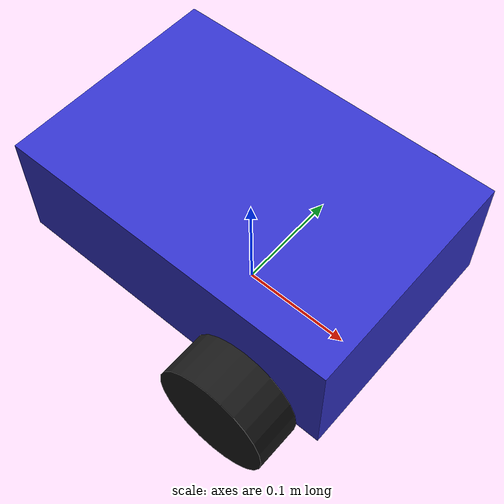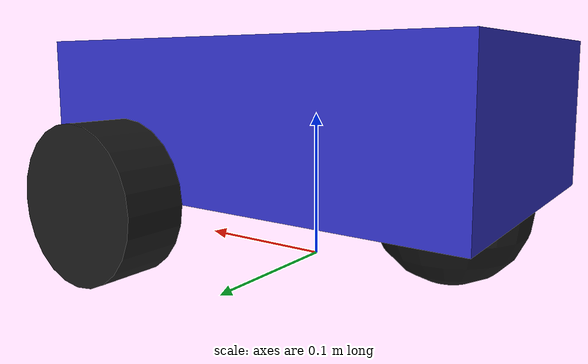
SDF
<?xml version="1.0" ?>
<sdf version="1.9">
  <model name="basicbot">
    <pose>0 0 0 0 0 0</pose>

    <link name="base_link">
      <pose>0 0 0.1 0 0 0</pose>

      <inertial>
        <mass>2.0</mass>
        <inertia>
          <ixx>0.008333</ixx>
          <ixy>0</ixy>
          <ixz>0</ixz>
          <iyy>0.016666</iyy>
          <iyz>0</iyz>
          <izz>0.021666</izz>
        </inertia>
      </inertial>

      <visual name="chassis_visual">
        <geometry>
          <box>
            <size>0.3 0.2 0.1</size>
          </box>
        </geometry>
        <material>
          <ambient>0.2 0.2 0.8 1</ambient>
          <diffuse>0.2 0.2 0.8 1</diffuse>
          <specular>0.2 0.2 0.8 1</specular>
        </material>
      </visual>

      <collision name="chassis_collision">
        <geometry>
          <box>
            <size>0.3 0.2 0.1</size>
          </box>
        </geometry>
      </collision>

      <!-- Caster wheel (attached rigidly to chassis for simplicity, frictionless) -->
      <visual name="caster_visual">
        <pose>-0.1 0 -0.05 0 0 0</pose>
        <geometry>
          <sphere>
            <radius>0.05</radius>
          </sphere>
        </geometry>
        <material>
          <ambient>0.1 0.1 0.1 1</ambient>
          <diffuse>0.1 0.1 0.1 1</diffuse>
        </material>
      </visual>

      <collision name="caster_collision">
        <pose>-0.1 0 -0.05 0 0 0</pose>
        <geometry>
          <sphere>
            <radius>0.05</radius>
          </sphere>
        </geometry>
        <surface>
          <friction>
            <ode>
              <mu>0.0</mu>
              <mu2>0.0</mu2>
              <slip1>1.0</slip1>
              <slip2>1.0</slip2>
            </ode>
          </friction>
        </surface>
      </collision>

      <!-- LiDAR Sensor -->
      <sensor name="lidar" type="gpu_lidar">
        <pose>0.12 0 0.06 0 0 0</pose>
        <topic>/scan</topic>
        <update_rate>10</update_rate>
        <ray>
          <scan>
            <horizontal>
              <samples>360</samples>
              <resolution>1</resolution>
              <min_angle>-3.14159</min_angle>
              <max_angle>3.14159</max_angle>
            </horizontal>
          </scan>
          <range>
            <min>0.1</min>
            <max>8.0</max>
            <resolution>0.01</resolution>
          </range>
        </ray>
        <always_on>1</always_on>
        <visualize>true</visualize>
      </sensor>

      <!-- RGB Camera Sensor -->
      <sensor name="camera" type="camera">
        <pose>0.15 0 0.02 0 0 0</pose>
        <topic>/camera/image_raw</topic>
        <update_rate>30</update_rate>
        <camera>
          <horizontal_fov>1.3962634</horizontal_fov> <!-- ~80 degrees -->
          <image>
            <width>640</width>
            <height>480</height>
            <format>R8G8B8</format>
          </image>
          <clip>
            <near>0.05</near>
            <far>100</far>
          </clip>
        </camera>
        <always_on>1</always_on>
        <visualize>true</visualize>
      </sensor>
    </link>

    <!-- Left Wheel -->
    <link name="left_wheel">
      <pose>0.08 0.12 0.05 -1.57079632679 0 0</pose>
      <inertial>
        <mass>0.2</mass>
        <inertia>
          <ixx>0.0001316</ixx>
          <ixy>0</ixy>
          <ixz>0</ixz>
          <iyy>0.0001316</iyy>
          <iyz>0</iyz>
          <izz>0.00025</izz>
        </inertia>
      </inertial>
      <visual name="left_wheel_visual">
        <geometry>
          <cylinder>
            <radius>0.05</radius>
            <length>0.04</length>
          </cylinder>
        </geometry>
        <material>
          <ambient>0.1 0.1 0.1 1</ambient>
          <diffuse>0.1 0.1 0.1 1</diffuse>
        </material>
      </visual>
      <collision name="left_wheel_collision">
        <geometry>
          <cylinder>
            <radius>0.05</radius>
            <length>0.04</length>
          </cylinder>
        </geometry>
      </collision>
    </link>

    <!-- Right Wheel -->
    <link name="right_wheel">
      <pose>0.08 -0.12 0.05 -1.57079632679 0 0</pose>
      <inertial>
        <mass>0.2</mass>
        <inertia>
          <ixx>0.0001316</ixx>
          <ixy>0</ixy>
          <ixz>0</ixz>
          <iyy>0.0001316</iyy>
          <iyz>0</iyz>
          <izz>0.00025</izz>
        </inertia>
      </inertial>
      <visual name="right_wheel_visual">
        <geometry>
          <cylinder>
            <radius>0.05</radius>
            <length>0.04</length>
          </cylinder>
        </geometry>
        <material>
          <ambient>0.1 0.1 0.1 1</ambient>
          <diffuse>0.1 0.1 0.1 1</diffuse>
        </material>
      </visual>
      <collision name="right_wheel_collision">
        <geometry>
          <cylinder>
            <radius>0.05</radius>
            <length>0.04</length>
          </cylinder>
        </geometry>
      </collision>
    </link>

    <!-- Joints -->
    <joint name="left_wheel_joint" type="revolute">
      <parent>base_link</parent>
      <child>left_wheel</child>
      <axis>
        <xyz>0 0 1</xyz>
        <limit>
          <lower>-1e+16</lower>
          <upper>1e+16</upper>
        </limit>
      </axis>
    </joint>

    <joint name="right_wheel_joint" type="revolute">
      <parent>base_link</parent>
      <child>right_wheel</child>
      <axis>
        <xyz>0 0 1</xyz>
        <limit>
          <lower>-1e+16</lower>
          <upper>1e+16</upper>
        </limit>
      </axis>
    </joint>

    <!-- Diff Drive Plugin -->
    <plugin
      filename="gz-sim-diff-drive-system"
      name="gz::sim::systems::DiffDrive">
      <left_joint>left_wheel_joint</left_joint>
      <right_joint>right_wheel_joint</right_joint>
      <wheel_separation>0.24</wheel_separation>
      <wheel_radius>0.05</wheel_radius>
      <odom_publish_frequency>50</odom_publish_frequency>
      <topic>/cmd_vel</topic>
      <odom_topic>/odom</odom_topic>
      <tf_topic>/tf</tf_topic>
      <frame_id>odom</frame_id>
      <child_frame_id>base_link</child_frame_id>
    </plugin>
  </model>
</sdf>
